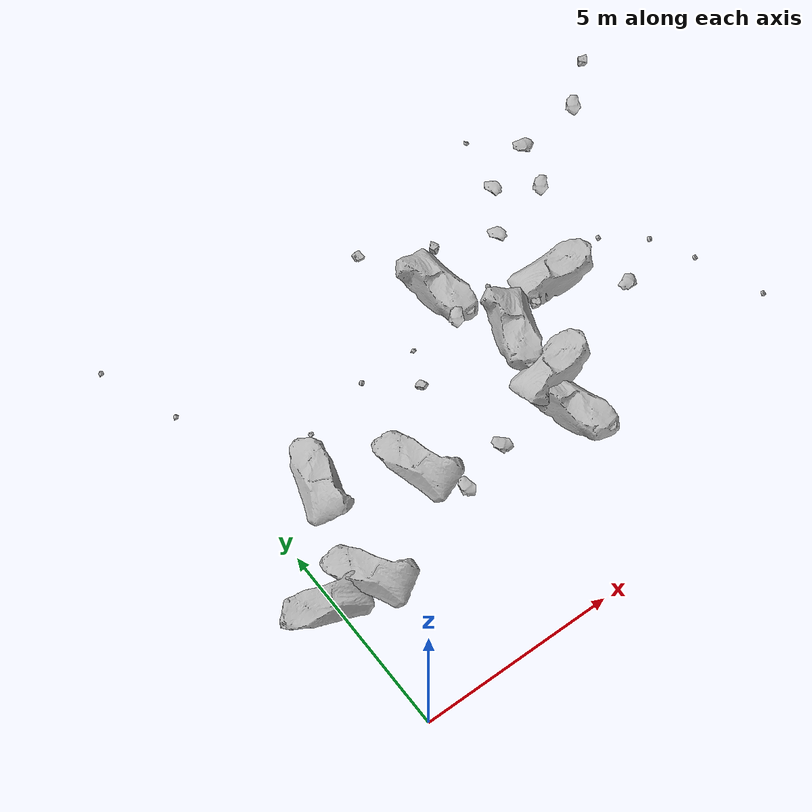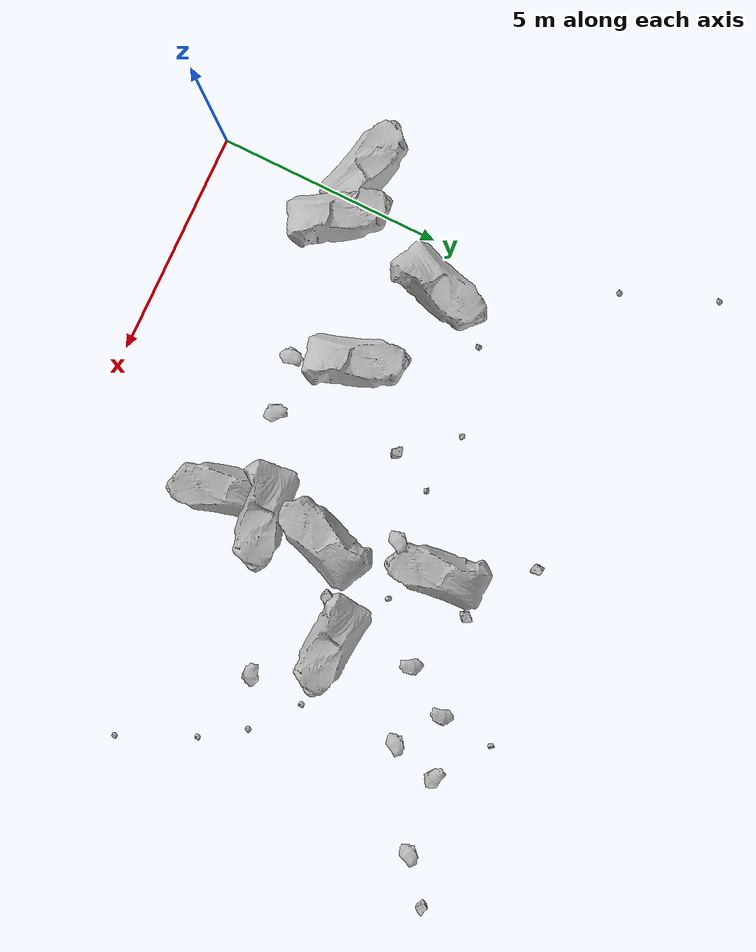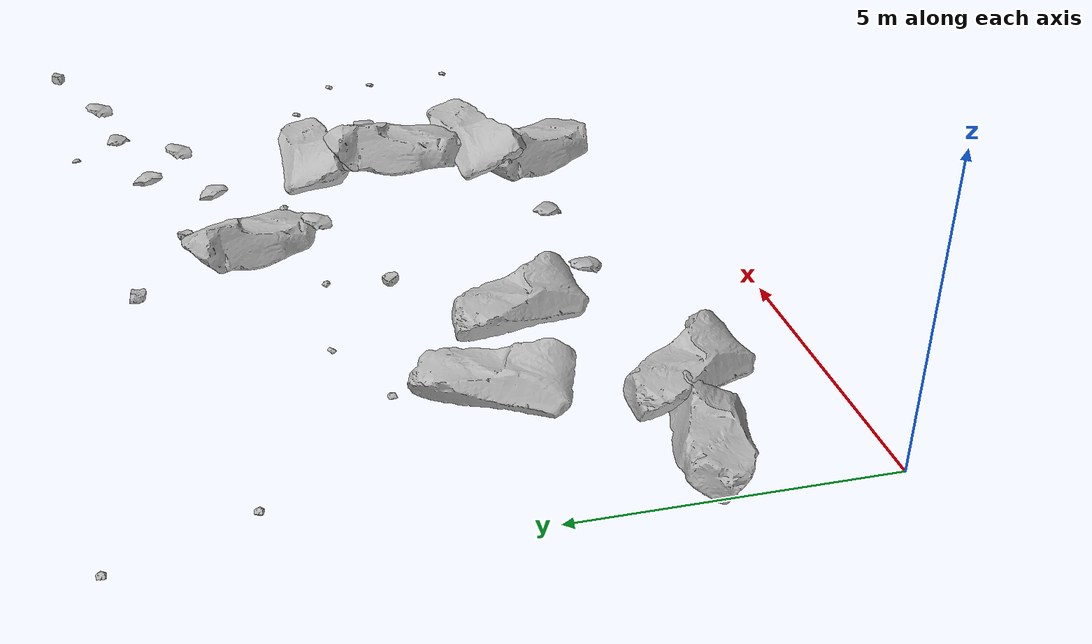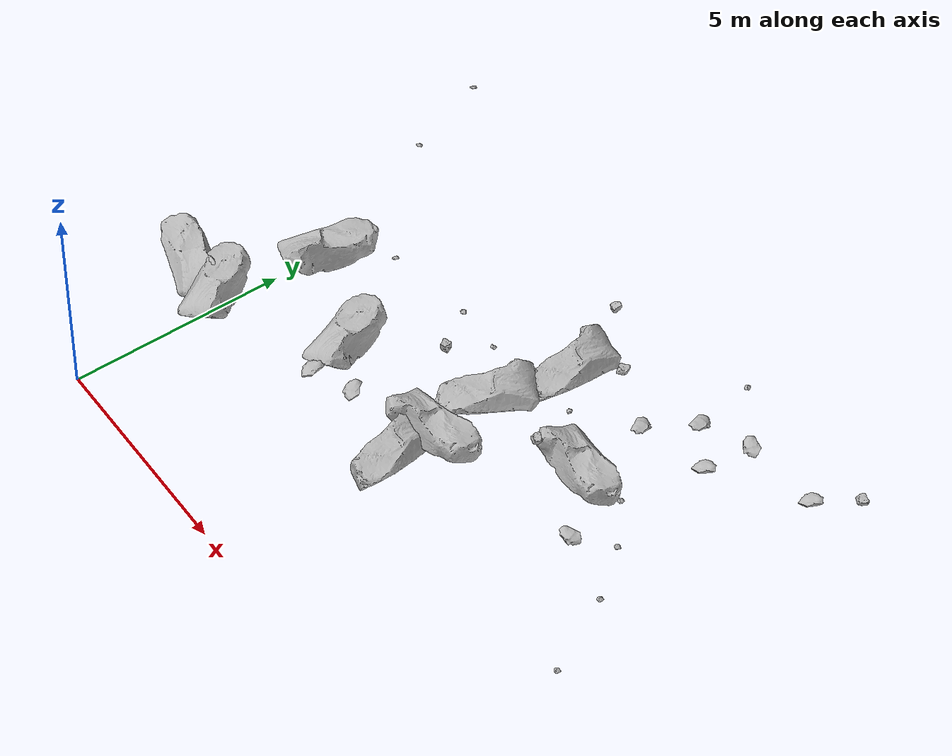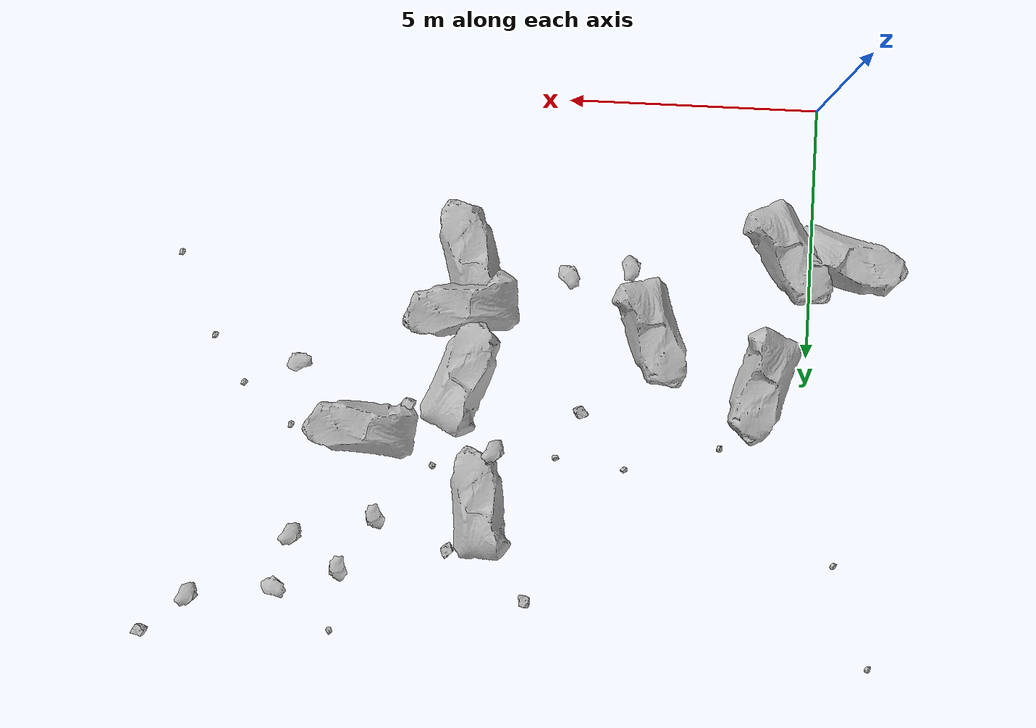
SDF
<sdf version="1.7">
 <world name="marsyard">
  <model name="Rock_3">
   <static>true</static>
   <pose>3.7139 3.5169 1.6688 0.0000 0.0000 -1.6949</pose>
   <link name="link">
    <visual name="visual">
     <geometry><mesh><uri>package://rock_generator/rocks_ws/rock_8/meshes/rock_8.obj</uri></mesh></geometry>
    </visual>
   </link>
  </model>
  <model name="Rock_9">
   <static>true</static>
   <pose>12.8171 10.8848 1.4123 0.0000 0.0000 -1.2756</pose>
   <link name="link">
    <visual name="visual">
     <geometry><mesh><uri>package://rock_generator/rocks_ws/rock_1/meshes/rock_1.obj</uri></mesh></geometry>
    </visual>
    <collision name="collision">
     <geometry><mesh><uri>package://rock_generator/rocks_ws/rock_1/meshes/rock_1.obj</uri></mesh></geometry>
    </collision>
   </link>
  </model>
  <model name="Rock_13">
   <static>true</static>
   <pose>10.0526 8.9448 1.0803 0.0000 0.0000 -2.4446</pose>
   <link name="link">
    <visual name="visual">
     <geometry><mesh><uri>package://rock_generator/rocks_ws/rock_8/meshes/rock_8.obj</uri></mesh></geometry>
    </visual>
   </link>
  </model>
  <model name="Rock_16">
   <static>true</static>
   <pose>4.9935 7.2201 1.1024 0.0000 0.0000 -2.8585</pose>
   <link name="link">
    <visual name="visual">
     <geometry><mesh><uri>package://rock_generator/rocks_ws/rock_5/meshes/rock_5.obj</uri></mesh></geometry>
    </visual>
    <collision name="collision">
     <geometry><mesh><uri>package://rock_generator/rocks_ws/rock_5/meshes/rock_5.obj</uri></mesh></geometry>
    </collision>
   </link>
  </model>
  <model name="Rock_18">
   <static>true</static>
   <pose>7.3653 7.4770 1.1907 0.0000 0.0000 -0.5893</pose>
   <link name="link">
    <visual name="visual">
     <geometry><mesh><uri>package://rock_generator/rocks_ws/rock_5/meshes/rock_5.obj</uri></mesh></geometry>
    </visual>
    <collision name="collision">
     <geometry><mesh><uri>package://rock_generator/rocks_ws/rock_5/meshes/rock_5.obj</uri></mesh></geometry>
    </collision>
   </link>
  </model>
  <model name="Rock_22">
   <static>true</static>
   <pose>1.8138 6.8938 1.1529 0.0000 0.0000 -1.6964</pose>
   <link name="link">
    <visual name="visual">
     <geometry><mesh><uri>package://rock_generator/rocks_ws/rock_5/meshes/rock_5.obj</uri></mesh></geometry>
    </visual>
    <collision name="collision">
     <geometry><mesh><uri>package://rock_generator/rocks_ws/rock_5/meshes/rock_5.obj</uri></mesh></geometry>
    </collision>
   </link>
  </model>
  <model name="Rock_26">
   <static>true</static>
   <pose>7.8678 6.3286 1.5445 0.0000 0.0000 -1.1531</pose>
   <link name="link">
    <visual name="visual">
     <geometry><mesh><uri>package://rock_generator/rocks_ws/rock_1/meshes/rock_1.obj</uri></mesh></geometry>
    </visual>
   </link>
  </model>
  <model name="Rock_33">
   <static>true</static>
   <pose>-0.5008 3.2144 1.1992 0.0000 0.0000 -0.1172</pose>
   <link name="link">
    <visual name="visual">
     <geometry><mesh><uri>package://rock_generator/rocks_ws/rock_4/meshes/rock_4.obj</uri></mesh></geometry>
    </visual>
    <collision name="collision">
     <geometry><mesh><uri>package://rock_generator/rocks_ws/rock_4/meshes/rock_4.obj</uri></mesh></geometry>
    </collision>
   </link>
  </model>
  <model name="Rock_48">
   <static>true</static>
   <pose>8.4550 8.5371 1.0524 0.0000 0.0000 1.7903</pose>
   <link name="link">
    <visual name="visual">
     <geometry><mesh><uri>package://rock_generator/rocks_ws/rock_8/meshes/rock_8.obj</uri></mesh></geometry>
    </visual>
   </link>
  </model>
  <model name="Rock_50">
   <static>true</static>
   <pose>11.6891 5.1420 1.2525 0.0000 0.0000 1.3285</pose>
   <link name="link">
    <visual name="visual">
     <geometry><mesh><uri>package://rock_generator/rocks_ws/rock_5/meshes/rock_5.obj</uri></mesh></geometry>
    </visual>
   </link>
  </model>
  <model name="Rock_56">
   <static>true</static>
   <pose>4.8980 3.7476 2.0027 0.0000 0.0000 -1.1063</pose>
   <link name="link">
    <visual name="visual">
     <geometry><mesh><uri>package://rock_generator/rocks_ws/rock_8/meshes/rock_8.obj</uri></mesh></geometry>
    </visual>
    <collision name="collision">
     <geometry><mesh><uri>package://rock_generator/rocks_ws/rock_8/meshes/rock_8.obj</uri></mesh></geometry>
    </collision>
   </link>
  </model>
  <model name="Rock_60">
   <static>true</static>
   <pose>-0.4440 9.0438 1.3451 0.0000 0.0000 -2.1945</pose>
   <link name="link">
    <visual name="visual">
     <geometry><mesh><uri>package://rock_generator/rocks_ws/rock_5/meshes/rock_5.obj</uri></mesh></geometry>
    </visual>
    <collision name="collision">
     <geometry><mesh><uri>package://rock_generator/rocks_ws/rock_5/meshes/rock_5.obj</uri></mesh></geometry>
    </collision>
   </link>
  </model>
  <model name="Rock_61">
   <static>true</static>
   <pose>10.0403 5.5732 1.2345 0.0000 0.0000 0.1002</pose>
   <link name="link">
    <visual name="visual">
     <geometry><mesh><uri>package://rock_generator/rocks_ws/rock_8/meshes/rock_8.obj</uri></mesh></geometry>
    </visual>
    <collision name="collision">
     <geometry><mesh><uri>package://rock_generator/rocks_ws/rock_8/meshes/rock_8.obj</uri></mesh></geometry>
    </collision>
   </link>
  </model>
  <model name="Rock_76">
   <static>true</static>
   <pose>7.0022 9.1291 1.0042 0.0000 0.0000 -0.2681</pose>
   <link name="link">
    <visual name="visual">
     <geometry><mesh><uri>package://rock_generator/rocks_ws/rock_1/meshes/rock_1.obj</uri></mesh></geometry>
    </visual>
   </link>
  </model>
  <model name="Rock_82">
   <static>true</static>
   <pose>3.2243 4.7650 1.1795 0.0000 0.0000 -1.0739</pose>
   <link name="link">
    <visual name="visual">
     <geometry><mesh><uri>package://rock_generator/rocks_ws/rock_4/meshes/rock_4.obj</uri></mesh></geometry>
    </visual>
   </link>
  </model>
  <model name="Rock_97">
   <static>true</static>
   <pose>6.7676 3.4522 1.8249 0.0000 0.0000 1.9981</pose>
   <link name="link">
    <visual name="visual">
     <geometry><mesh><uri>package://rock_generator/rocks_ws/rock_4/meshes/rock_4.obj</uri></mesh></geometry>
    </visual>
   </link>
  </model>
  <model name="Rock_103">
   <static>true</static>
   <pose>9.1191 9.5621 1.0924 0.0000 0.0000 1.5242</pose>
   <link name="link">
    <visual name="visual">
     <geometry><mesh><uri>package://rock_generator/rocks_ws/rock_8/meshes/rock_8.obj</uri></mesh></geometry>
    </visual>
   </link>
  </model>
  <model name="Rock_117">
   <static>true</static>
   <pose>9.1702 10.7018 1.5345 0.0000 0.0000 2.0761</pose>
   <link name="link">
    <visual name="visual">
     <geometry><mesh><uri>package://rock_generator/rocks_ws/rock_5/meshes/rock_5.obj</uri></mesh></geometry>
    </visual>
   </link>
  </model>
  <model name="Rock_125">
   <static>true</static>
   <pose>5.4949 10.0330 0.9200 0.0000 0.0000 -2.5277</pose>
   <link name="link">
    <visual name="visual">
     <geometry><mesh><uri>package://rock_generator/rocks_ws/rock_1/meshes/rock_1.obj</uri></mesh></geometry>
    </visual>
    <collision name="collision">
     <geometry><mesh><uri>package://rock_generator/rocks_ws/rock_1/meshes/rock_1.obj</uri></mesh></geometry>
    </collision>
   </link>
  </model>
  <model name="Rock_129">
   <static>true</static>
   <pose>3.6266 7.3938 0.7985 0.0000 0.0000 0.6142</pose>
   <link name="link">
    <visual name="visual">
     <geometry><mesh><uri>package://rock_generator/rocks_ws/rock_5/meshes/rock_5.obj</uri></mesh></geometry>
    </visual>
   </link>
  </model>
  <model name="Rock_136">
   <static>true</static>
   <pose>6.1836 7.1505 1.5388 0.0000 0.0000 -2.3701</pose>
   <link name="link">
    <visual name="visual">
     <geometry><mesh><uri>package://rock_generator/rocks_ws/rock_8/meshes/rock_8.obj</uri></mesh></geometry>
    </visual>
   </link>
  </model>
  <model name="Rock_137">
   <static>true</static>
   <pose>12.4732 3.5393 0.9870 0.0000 0.0000 1.2341</pose>
   <link name="link">
    <visual name="visual">
     <geometry><mesh><uri>package://rock_generator/rocks_ws/rock_5/meshes/rock_5.obj</uri></mesh></geometry>
    </visual>
   </link>
  </model>
  <model name="Rock_149">
   <static>true</static>
   <pose>10.3046 9.9416 1.2871 0.0000 0.0000 -0.5361</pose>
   <link name="link">
    <visual name="visual">
     <geometry><mesh><uri>package://rock_generator/rocks_ws/rock_8/meshes/rock_8.obj</uri></mesh></geometry>
    </visual>
    <collision name="collision">
     <geometry><mesh><uri>package://rock_generator/rocks_ws/rock_8/meshes/rock_8.obj</uri></mesh></geometry>
    </collision>
   </link>
  </model>
  <model name="Rock_168">
   <static>true</static>
   <pose>1.1429 5.6866 1.3956 0.0000 0.0000 -1.7145</pose>
   <link name="link">
    <visual name="visual">
     <geometry><mesh><uri>package://rock_generator/rocks_ws/rock_4/meshes/rock_4.obj</uri></mesh></geometry>
    </visual>
   </link>
  </model>
  <model name="Rock_172">
   <static>true</static>
   <pose>8.7865 6.7849 1.0776 0.0000 0.0000 -3.0459</pose>
   <link name="link">
    <visual name="visual">
     <geometry><mesh><uri>package://rock_generator/rocks_ws/rock_4/meshes/rock_4.obj</uri></mesh></geometry>
    </visual>
    <collision name="collision">
     <geometry><mesh><uri>package://rock_generator/rocks_ws/rock_4/meshes/rock_4.obj</uri></mesh></geometry>
    </collision>
   </link>
  </model>
  <model name="Rock_202">
   <static>true</static>
   <pose>4.5271 6.3059 1.2563 0.0000 0.0000 1.1967</pose>
   <link name="link">
    <visual name="visual">
     <geometry><mesh><uri>package://rock_generator/rocks_ws/rock_1/meshes/rock_1.obj</uri></mesh></geometry>
    </visual>
   </link>
  </model>
  <model name="Rock_234">
   <static>true</static>
   <pose>0.6874 3.1576 1.4227 0.0000 0.0000 -0.8443</pose>
   <link name="link">
    <visual name="visual">
     <geometry><mesh><uri>package://rock_generator/rocks_ws/rock_4/meshes/rock_4.obj</uri></mesh></geometry>
    </visual>
   </link>
  </model>
  <model name="Rock_251">
   <static>true</static>
   <pose>6.7922 5.7349 2.0931 0.0000 0.0000 1.3653</pose>
   <link name="link">
    <visual name="visual">
     <geometry><mesh><uri>package://rock_generator/rocks_ws/rock_4/meshes/rock_4.obj</uri></mesh></geometry>
    </visual>
    <collision name="collision">
     <geometry><mesh><uri>package://rock_generator/rocks_ws/rock_4/meshes/rock_4.obj</uri></mesh></geometry>
    </collision>
   </link>
  </model>
  <model name="Rock_257">
   <static>true</static>
   <pose>11.0226 6.0379 1.5883 0.0000 0.0000 0.9510</pose>
   <link name="link">
    <visual name="visual">
     <geometry><mesh><uri>package://rock_generator/rocks_ws/rock_5/meshes/rock_5.obj</uri></mesh></geometry>
    </visual>
    <collision name="collision">
     <geometry><mesh><uri>package://rock_generator/rocks_ws/rock_5/meshes/rock_5.obj</uri></mesh></geometry>
    </collision>
   </link>
  </model>
  <model name="Rock_261">
   <static>true</static>
   <pose>10.0933 6.8015 1.5447 0.0000 0.0000 1.3468</pose>
   <link name="link">
    <visual name="visual">
     <geometry><mesh><uri>package://rock_generator/rocks_ws/rock_5/meshes/rock_5.obj</uri></mesh></geometry>
    </visual>
   </link>
  </model>
  <model name="Rock_274">
   <static>true</static>
   <pose>12.0037 10.1979 1.1195 0.0000 0.0000 -2.3136</pose>
   <link name="link">
    <visual name="visual">
     <geometry><mesh><uri>package://rock_generator/rocks_ws/rock_8/meshes/rock_8.obj</uri></mesh></geometry>
    </visual>
   </link>
  </model>
  <model name="Rock_290">
   <static>true</static>
   <pose>-1.1856 10.9883 1.3478 0.0000 0.0000 -1.9144</pose>
   <link name="link">
    <visual name="visual">
     <geometry><mesh><uri>package://rock_generator/rocks_ws/rock_5/meshes/rock_5.obj</uri></mesh></geometry>
    </visual>
   </link>
  </model>
  <model name="Rock_294">
   <static>true</static>
   <pose>6.9187 4.4620 2.0498 0.0000 0.0000 -2.8093</pose>
   <link name="link">
    <visual name="visual">
     <geometry><mesh><uri>package://rock_generator/rocks_ws/rock_4/meshes/rock_4.obj</uri></mesh></geometry>
    </visual>
   </link>
  </model>
  <model name="Rock_322">
   <static>true</static>
   <pose>6.4437 8.1519 0.8932 0.0000 0.0000 1.8339</pose>
   <link name="link">
    <visual name="visual">
     <geometry><mesh><uri>package://rock_generator/rocks_ws/rock_4/meshes/rock_4.obj</uri></mesh></geometry>
    </visual>
   </link>
  </model>
 </world>
</sdf>
